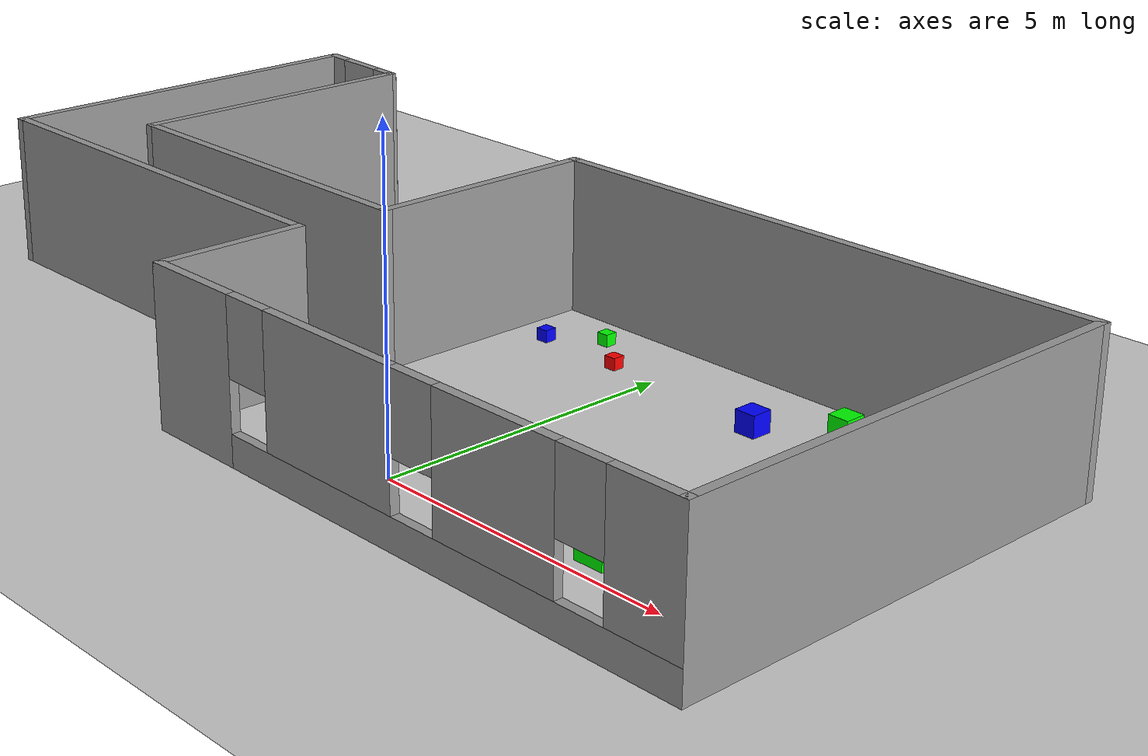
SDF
<sdf version="1.6">
 <world name="default">
  <light name="sun" type="directional">
   <pose>0 0 10 0 -0 0</pose>
   <diffuse>0.8 0.8 0.8 1</diffuse>
   <specular>0.1 0.1 0.1 1</specular>
   <attenuation>
    <range>1000</range>
    <constant>0.9</constant>
    <linear>0.01</linear>
    <quadratic>0.001</quadratic>
   </attenuation>
   <direction>-0.5 0.5 -1</direction>
  </light>
  <model name="ground_plane">
   <static>1</static>
   <link name="link">
    <collision name="collision">
     <geometry><plane><normal>0 0 1</normal><size>100 100</size></plane></geometry>
     <surface><friction><ode><mu>100</mu><mu2>50</mu2></ode></friction></surface>
    </collision>
    <visual name="visual">
     <cast_shadows>0</cast_shadows>
     <geometry><plane><normal>0 0 1</normal><size>100 100</size></plane></geometry>
     <material>
      <script><uri>file://media/materials/scripts/gazebo.material</uri><name>Gazebo/Grey</name></script>
     </material>
    </visual>
   </link>
  </model>
  <gravity>0 0 -9.8</gravity>
  <magnetic_field>6e-06 2.3e-05 -4.2e-05</magnetic_field>
  <atmosphere type="adiabatic"/>
  <physics name="default_physics" default="0" type="ode">
   <max_step_size>0.001</max_step_size>
   <real_time_factor>1</real_time_factor>
   <real_time_update_rate>1000</real_time_update_rate>
  </physics>
  <scene><ambient>0.4 0.4 0.4 1</ambient><background>0.7 0.7 0.7 1</background><shadows>1</shadows></scene>
  <spherical_coordinates>
   <surface_model>EARTH_WGS84</surface_model>
   <latitude_deg>0</latitude_deg>
   <longitude_deg>0</longitude_deg>
   <elevation>0</elevation>
   <heading_deg>0</heading_deg>
  </spherical_coordinates>
  <model name="mapa_final">
   <pose>-2.18928 3.20404 0 0 -0 0</pose>
   <link name="Wall_1">
    <collision name="Wall_1_Collision">
     <geometry><box><size>6.75 0.15 2.5</size></box></geometry>
     <pose>0 0 1.25 0 -0 0</pose>
    </collision>
    <visual name="Wall_1_Visual">
     <pose>0 0 1.25 0 -0 0</pose>
     <geometry><box><size>6.75 0.15 2.5</size></box></geometry>
     <material>
      <script><uri>file://media/materials/scripts/gazebo.material</uri><name>Gazebo/Grey</name></script>
      <ambient>1 1 1 1</ambient>
     </material>
    </visual>
    <pose>-8.72292 1.17292 0 0 0 -1.5708</pose>
   </link>
   <link name="Wall_10">
    <pose>-7.84792 4.42292 0 0 -0 3.08451</pose>
    <visual name="Wall_10_Visual_0">
     <pose>-0.700515 0 1.25 0 -0 0</pose>
     <geometry><box><size>0.501825 0.15 2.5</size></box></geometry>
     <material>
      <script><uri>file://media/materials/scripts/gazebo.material</uri><name>Gazebo/Grey</name></script>
      <ambient>1 1 1 1</ambient>
     </material>
    </visual>
    <collision name="Wall_10_Collision_0">
     <geometry><box><size>0.501825 0.15 2.5</size></box></geometry>
     <pose>-0.700515 0 1.25 0 -0 0</pose>
    </collision>
    <visual name="Wall_10_Visual_1">
     <pose>0.700912 0 1.25 0 -0 0</pose>
     <geometry><box><size>0.50103 0.15 2.5</size></box></geometry>
     <material>
      <script><uri>file://media/materials/scripts/gazebo.material</uri><name>Gazebo/Grey</name></script>
      <ambient>1 1 1 1</ambient>
     </material>
    </visual>
    <collision name="Wall_10_Collision_1">
     <geometry><box><size>0.50103 0.15 2.5</size></box></geometry>
     <pose>0.700912 0 1.25 0 -0 0</pose>
    </collision>
    <visual name="Wall_10_Visual_2">
     <pose>0.000397 0 2.25 0 -0 0</pose>
     <geometry><box><size>0.9 0.15 0.5</size></box></geometry>
     <material>
      <script><uri>file://media/materials/scripts/gazebo.material</uri><name>Gazebo/Grey</name></script>
      <ambient>1 1 1 1</ambient>
     </material>
    </visual>
    <collision name="Wall_10_Collision_2">
     <geometry><box><size>0.9 0.15 0.5</size></box></geometry>
     <pose>0.000397 0 2.25 0 -0 0</pose>
    </collision>
   </link>
   <link name="Wall_2">
    <collision name="Wall_2_Collision">
     <geometry><box><size>7.75 0.15 2.5</size></box></geometry>
     <pose>0 0 1.25 0 -0 0</pose>
    </collision>
    <visual name="Wall_2_Visual">
     <pose>0 0 1.25 0 -0 0</pose>
     <geometry><box><size>7.75 0.15 2.5</size></box></geometry>
     <material>
      <script><uri>file://media/materials/scripts/gazebo.material</uri><name>Gazebo/Grey</name></script>
      <ambient>1 1 1 1</ambient>
     </material>
    </visual>
    <pose>-4.92292 -2.12708 0 0 -0 0</pose>
   </link>
   <link name="Wall_3">
    <collision name="Wall_3_Collision">
     <geometry><box><size>2.5 0.15 2.5</size></box></geometry>
     <pose>0 0 1.25 0 -0 0</pose>
    </collision>
    <visual name="Wall_3_Visual">
     <pose>0 0 1.25 0 -0 0</pose>
     <geometry><box><size>2.5 0.15 2.5</size></box></geometry>
     <material>
      <script><uri>file://media/materials/scripts/gazebo.material</uri><name>Gazebo/Grey</name></script>
      <ambient>1 1 1 1</ambient>
     </material>
    </visual>
    <pose>-1.12292 -3.30208 0 0 0 -1.5708</pose>
   </link>
   <link name="Wall_4">
    <pose>3.80208 -4.47708 0 0 -0 0</pose>
    <visual name="Wall_4_Visual_0">
     <pose>-4.14301 0 1.25 0 -0 0</pose>
     <geometry><box><size>1.71398 0.15 2.5</size></box></geometry>
     <material>
      <script><uri>file://media/materials/scripts/gazebo.material</uri><name>Gazebo/Grey</name></script>
      <ambient>1 1 1 1</ambient>
     </material>
    </visual>
    <collision name="Wall_4_Collision_0">
     <geometry><box><size>1.71398 0.15 2.5</size></box></geometry>
     <pose>-4.14301 0 1.25 0 -0 0</pose>
    </collision>
    <visual name="Wall_4_Visual_1">
     <pose>0.856991 0 0.25 0 -0 0</pose>
     <geometry><box><size>8.28602 0.15 0.5</size></box></geometry>
     <material>
      <script><uri>file://media/materials/scripts/gazebo.material</uri><name>Gazebo/Grey</name></script>
      <ambient>1 1 1 1</ambient>
     </material>
    </visual>
    <collision name="Wall_4_Collision_1">
     <geometry><box><size>8.28602 0.15 0.5</size></box></geometry>
     <pose>0.856991 0 0.25 0 -0 0</pose>
    </collision>
    <visual name="Wall_4_Visual_2">
     <pose>-1.21503 0 1.5 0 -0 0</pose>
     <geometry><box><size>2.54198 0.15 2</size></box></geometry>
     <material>
      <script><uri>file://media/materials/scripts/gazebo.material</uri><name>Gazebo/Grey</name></script>
      <ambient>1 1 1 1</ambient>
     </material>
    </visual>
    <collision name="Wall_4_Collision_2">
     <geometry><box><size>2.54198 0.15 2</size></box></geometry>
     <pose>-1.21503 0 1.5 0 -0 0</pose>
    </collision>
    <visual name="Wall_4_Visual_3">
     <pose>1.91588 0 1.5 0 -0 0</pose>
     <geometry><box><size>2.11984 0.15 2</size></box></geometry>
     <material>
      <script><uri>file://media/materials/scripts/gazebo.material</uri><name>Gazebo/Grey</name></script>
      <ambient>1 1 1 1</ambient>
     </material>
    </visual>
    <collision name="Wall_4_Collision_3">
     <geometry><box><size>2.11984 0.15 2</size></box></geometry>
     <pose>1.91588 0 1.5 0 -0 0</pose>
    </collision>
    <visual name="Wall_4_Visual_4">
     <pose>4.3879 0 1.5 0 -0 0</pose>
     <geometry><box><size>1.2242 0.15 2</size></box></geometry>
     <material>
      <script><uri>file://media/materials/scripts/gazebo.material</uri><name>Gazebo/Grey</name></script>
      <ambient>1 1 1 1</ambient>
     </material>
    </visual>
    <collision name="Wall_4_Collision_4">
     <geometry><box><size>1.2242 0.15 2</size></box></geometry>
     <pose>4.3879 0 1.5 0 -0 0</pose>
    </collision>
    <visual name="Wall_4_Visual_5">
     <pose>-2.88602 0 1.9 0 -0 0</pose>
     <geometry><box><size>0.8 0.15 1.2</size></box></geometry>
     <material>
      <script><uri>file://media/materials/scripts/gazebo.material</uri><name>Gazebo/Grey</name></script>
      <ambient>1 1 1 1</ambient>
     </material>
    </visual>
    <collision name="Wall_4_Collision_5">
     <geometry><box><size>0.8 0.15 1.2</size></box></geometry>
     <pose>-2.88602 0 1.9 0 -0 0</pose>
    </collision>
    <visual name="Wall_4_Visual_6">
     <pose>0.455963 0 1.9 0 -0 0</pose>
     <geometry><box><size>0.8 0.15 1.2</size></box></geometry>
     <material>
      <script><uri>file://media/materials/scripts/gazebo.material</uri><name>Gazebo/Grey</name></script>
      <ambient>1 1 1 1</ambient>
     </material>
    </visual>
    <collision name="Wall_4_Collision_6">
     <geometry><box><size>0.8 0.15 1.2</size></box></geometry>
     <pose>0.455963 0 1.9 0 -0 0</pose>
    </collision>
    <visual name="Wall_4_Visual_7">
     <pose>3.3758 0 1.9 0 -0 0</pose>
     <geometry><box><size>0.8 0.15 1.2</size></box></geometry>
     <material>
      <script><uri>file://media/materials/scripts/gazebo.material</uri><name>Gazebo/Grey</name></script>
      <ambient>1 1 1 1</ambient>
     </material>
    </visual>
    <collision name="Wall_4_Collision_7">
     <geometry><box><size>0.8 0.15 1.2</size></box></geometry>
     <pose>3.3758 0 1.9 0 -0 0</pose>
    </collision>
   </link>
   <link name="Wall_5">
    <collision name="Wall_5_Collision">
     <geometry><box><size>7.75 0.15 2.5</size></box></geometry>
     <pose>0 0 1.25 0 -0 0</pose>
    </collision>
    <visual name="Wall_5_Visual">
     <pose>0 0 1.25 0 -0 0</pose>
     <geometry><box><size>7.75 0.15 2.5</size></box></geometry>
     <material>
      <script><uri>file://media/materials/scripts/gazebo.material</uri><name>Gazebo/Grey</name></script>
      <ambient>1 1 1 1</ambient>
     </material>
    </visual>
    <pose>8.72708 -0.677078 0 0 -0 1.5708</pose>
   </link>
   <link name="Wall_6">
    <collision name="Wall_6_Collision">
     <geometry><box><size>9.75 0.15 2.5</size></box></geometry>
     <pose>0 0 1.25 0 -0 0</pose>
    </collision>
    <visual name="Wall_6_Visual">
     <pose>0 0 1.25 0 -0 0</pose>
     <geometry><box><size>9.75 0.15 2.5</size></box></geometry>
     <material>
      <script><uri>file://media/materials/scripts/gazebo.material</uri><name>Gazebo/Grey</name></script>
      <ambient>1 1 1 1</ambient>
     </material>
    </visual>
    <pose>3.92708 3.12292 0 0 -0 3.14159</pose>
   </link>
   <link name="Wall_7">
    <collision name="Wall_7_Collision">
     <geometry><box><size>4 0.15 2.5</size></box></geometry>
     <pose>0 0 1.25 0 -0 0</pose>
    </collision>
    <visual name="Wall_7_Visual">
     <pose>0 0 1.25 0 -0 0</pose>
     <geometry><box><size>4 0.15 2.5</size></box></geometry>
     <material>
      <script><uri>file://media/materials/scripts/gazebo.material</uri><name>Gazebo/Grey</name></script>
      <ambient>1 1 1 1</ambient>
     </material>
    </visual>
    <pose>-0.872922 1.19792 0 0 0 -1.5708</pose>
   </link>
   <link name="Wall_8">
    <collision name="Wall_8_Collision">
     <geometry><box><size>6.25 0.15 2.5</size></box></geometry>
     <pose>0 0 1.25 0 -0 0</pose>
    </collision>
    <visual name="Wall_8_Visual">
     <pose>0 0 1.25 0 -0 0</pose>
     <geometry><box><size>6.25 0.15 2.5</size></box></geometry>
     <material>
      <script><uri>file://media/materials/scripts/gazebo.material</uri><name>Gazebo/Grey</name></script>
      <ambient>1 1 1 1</ambient>
     </material>
    </visual>
    <pose>-3.92292 -0.727078 0 0 -0 3.14159</pose>
   </link>
   <link name="Wall_9">
    <collision name="Wall_9_Collision">
     <geometry><box><size>5.25 0.15 2.5</size></box></geometry>
     <pose>0 0 1.25 0 -0 0</pose>
    </collision>
    <visual name="Wall_9_Visual">
     <pose>0 0 1.25 0 -0 0</pose>
     <geometry><box><size>5.25 0.15 2.5</size></box></geometry>
     <material>
      <script><uri>file://media/materials/scripts/gazebo.material</uri><name>Gazebo/Grey</name></script>
      <ambient>1 1 1 1</ambient>
     </material>
    </visual>
    <pose>-6.97292 1.82292 0 0 -0 1.5708</pose>
   </link>
   <static>1</static>
  </model>
  <model name="mesa_pequenya_azul">
   <link name="link_0">
    <inertial>
     <mass>1</mass>
     <inertia>
      <ixx>0.166667</ixx>
      <ixy>0</ixy>
      <ixz>0</ixz>
      <iyy>0.166667</iyy>
      <iyz>0</iyz>
      <izz>0.166667</izz>
     </inertia>
    </inertial>
    <visual name="visual">
     <pose>0 0 -0.4 0 -0 0</pose>
     <geometry><box><size>0.2 0.2 0.2</size></box></geometry>
     <material>
      <lighting>1</lighting>
      <script><uri>file://media/materials/scripts/gazebo.material</uri><name>Gazebo/Grey</name></script>
      <ambient>0 0 1 1</ambient>
      <diffuse>0.7 0.7 0.7 1</diffuse>
      <specular>0.01 0.01 0.01 1</specular>
      <emissive>0 0 0 1</emissive>
      <shader type="vertex"><normal_map>__default__</normal_map></shader>
     </material>
    </visual>
    <collision name="collision">
     <geometry><box><size>1 1 1</size></box></geometry>
     <surface>
      <friction>
       <ode><mu>1</mu><mu2>1</mu2><fdir1>0 0 0</fdir1><slip1>0</slip1><slip2>0</slip2></ode>
       <torsional>
        <coefficient>1</coefficient>
        <patch_radius>0</patch_radius>
        <surface_radius>0</surface_radius>
        <use_patch_radius>1</use_patch_radius>
        <ode><slip>0</slip></ode>
       </torsional>
      </friction>
      <bounce><restitution_coefficient>0</restitution_coefficient><threshold>1e+06</threshold></bounce>
      <contact>
       <collide_without_contact>0</collide_without_contact>
       <collide_without_contact_bitmask>1</collide_without_contact_bitmask>
       <collide_bitmask>1</collide_bitmask>
       <ode>
        <soft_cfm>0</soft_cfm>
        <soft_erp>0.2</soft_erp>
        <kp>1e+13</kp>
        <kd>1</kd>
        <max_vel>0.01</max_vel>
        <min_depth>0</min_depth>
       </ode>
       <bullet>
        <split_impulse>1</split_impulse>
        <split_impulse_penetration_threshold>-0.01</split_impulse_penetration_threshold>
        <soft_cfm>0</soft_cfm>
        <soft_erp>0.2</soft_erp>
        <kp>1e+13</kp>
        <kd>1</kd>
       </bullet>
      </contact>
     </surface>
    </collision>
   </link>
   <static>0</static>
   <pose>-2.30858 5.04115 0.499995 1e-05 -0 0.024501</pose>
  </model>
  <model name="mesa_pequenya_verde">
   <link name="link_0">
    <inertial>
     <mass>1</mass>
     <inertia>
      <ixx>0.166667</ixx>
      <ixy>0</ixy>
      <ixz>0</ixz>
      <iyy>0.166667</iyy>
      <iyz>0</iyz>
      <izz>0.166667</izz>
     </inertia>
    </inertial>
    <visual name="visual">
     <pose>0 0 -0.4 0 -0 0</pose>
     <geometry><box><size>0.2 0.2 0.2</size></box></geometry>
     <material>
      <lighting>1</lighting>
      <script><uri>file://media/materials/scripts/gazebo.material</uri><name>Gazebo/Grey</name></script>
      <ambient>0 1 0 1</ambient>
      <diffuse>0.7 0.7 0.7 1</diffuse>
      <specular>0.01 0.01 0.01 1</specular>
      <emissive>0 0 0 1</emissive>
      <shader type="vertex"><normal_map>__default__</normal_map></shader>
     </material>
    </visual>
    <collision name="collision">
     <geometry><box><size>1 1 1</size></box></geometry>
     <surface>
      <friction>
       <ode><mu>1</mu><mu2>1</mu2><fdir1>0 0 0</fdir1><slip1>0</slip1><slip2>0</slip2></ode>
       <torsional>
        <coefficient>1</coefficient>
        <patch_radius>0</patch_radius>
        <surface_radius>0</surface_radius>
        <use_patch_radius>1</use_patch_radius>
        <ode><slip>0</slip></ode>
       </torsional>
      </friction>
      <bounce><restitution_coefficient>0</restitution_coefficient><threshold>1e+06</threshold></bounce>
      <contact>
       <collide_without_contact>0</collide_without_contact>
       <collide_without_contact_bitmask>1</collide_without_contact_bitmask>
       <collide_bitmask>1</collide_bitmask>
       <ode>
        <soft_cfm>0</soft_cfm>
        <soft_erp>0.2</soft_erp>
        <kp>1e+13</kp>
        <kd>1</kd>
        <max_vel>0.01</max_vel>
        <min_depth>0</min_depth>
       </ode>
       <bullet>
        <split_impulse>1</split_impulse>
        <split_impulse_penetration_threshold>-0.01</split_impulse_penetration_threshold>
        <soft_cfm>0</soft_cfm>
        <soft_erp>0.2</soft_erp>
        <kp>1e+13</kp>
        <kd>1</kd>
       </bullet>
      </contact>
     </surface>
    </collision>
   </link>
   <static>0</static>
   <pose>-1.55433 5.60671 0.5 0 -0 0.026941</pose>
  </model>
  <model name="mesa_pequenya_roja">
   <link name="link_0">
    <inertial>
     <mass>1</mass>
     <inertia>
      <ixx>0.166667</ixx>
      <ixy>0</ixy>
      <ixz>0</ixz>
      <iyy>0.166667</iyy>
      <iyz>0</iyz>
      <izz>0.166667</izz>
     </inertia>
    </inertial>
    <visual name="visual">
     <pose>0 0 -0.4 0 -0 0</pose>
     <geometry><box><size>0.2 0.2 0.2</size></box></geometry>
     <material>
      <lighting>1</lighting>
      <script><uri>file://media/materials/scripts/gazebo.material</uri><name>Gazebo/Grey</name></script>
      <ambient>1 0 0 1</ambient>
      <diffuse>0.7 0.7 0.7 1</diffuse>
      <specular>0.01 0.01 0.01 1</specular>
      <emissive>0 0 0 1</emissive>
      <shader type="vertex"><normal_map>__default__</normal_map></shader>
     </material>
    </visual>
    <collision name="collision">
     <geometry><box><size>1 1 1</size></box></geometry>
     <surface>
      <friction>
       <ode><mu>1</mu><mu2>1</mu2><fdir1>0 0 0</fdir1><slip1>0</slip1><slip2>0</slip2></ode>
       <torsional>
        <coefficient>1</coefficient>
        <patch_radius>0</patch_radius>
        <surface_radius>0</surface_radius>
        <use_patch_radius>1</use_patch_radius>
        <ode><slip>0</slip></ode>
       </torsional>
      </friction>
      <bounce><restitution_coefficient>0</restitution_coefficient><threshold>1e+06</threshold></bounce>
      <contact>
       <collide_without_contact>0</collide_without_contact>
       <collide_without_contact_bitmask>1</collide_without_contact_bitmask>
       <collide_bitmask>1</collide_bitmask>
       <ode>
        <soft_cfm>0</soft_cfm>
        <soft_erp>0.2</soft_erp>
        <kp>1e+13</kp>
        <kd>1</kd>
        <max_vel>0.01</max_vel>
        <min_depth>0</min_depth>
       </ode>
       <bullet>
        <split_impulse>1</split_impulse>
        <split_impulse_penetration_threshold>-0.01</split_impulse_penetration_threshold>
        <soft_cfm>0</soft_cfm>
        <soft_erp>0.2</soft_erp>
        <kp>1e+13</kp>
        <kd>1</kd>
       </bullet>
      </contact>
     </surface>
    </collision>
   </link>
   <static>0</static>
   <pose>-0.796134 5.0128 0.499995 -1e-05 -0 0.028794</pose>
  </model>
  <model name="mesa_mediana_azul">
   <link name="link_1">
    <inertial>
     <mass>1</mass>
     <inertia>
      <ixx>0.166667</ixx>
      <ixy>0</ixy>
      <ixz>0</ixz>
      <iyy>0.166667</iyy>
      <iyz>0</iyz>
      <izz>0.166667</izz>
     </inertia>
    </inertial>
    <visual name="visual">
     <pose>0 0 -0.325 0 -0 0</pose>
     <geometry><box><size>0.35 0.35 0.35</size></box></geometry>
     <material>
      <lighting>1</lighting>
      <script><uri>file://media/materials/scripts/gazebo.material</uri><name>Gazebo/Grey</name></script>
      <ambient>0 0 1 1</ambient>
      <diffuse>0.7 0.7 0.7 1</diffuse>
      <specular>0.01 0.01 0.01 1</specular>
      <emissive>0 0 0 1</emissive>
      <shader type="vertex"><normal_map>__default__</normal_map></shader>
     </material>
    </visual>
    <collision name="collision">
     <geometry><box><size>1 1 1</size></box></geometry>
     <surface>
      <friction>
       <ode><mu>1</mu><mu2>1</mu2><fdir1>0 0 0</fdir1><slip1>0</slip1><slip2>0</slip2></ode>
       <torsional>
        <coefficient>1</coefficient>
        <patch_radius>0</patch_radius>
        <surface_radius>0</surface_radius>
        <use_patch_radius>1</use_patch_radius>
        <ode><slip>0</slip></ode>
       </torsional>
      </friction>
      <bounce><restitution_coefficient>0</restitution_coefficient><threshold>1e+06</threshold></bounce>
      <contact>
       <collide_without_contact>0</collide_without_contact>
       <collide_without_contact_bitmask>1</collide_without_contact_bitmask>
       <collide_bitmask>1</collide_bitmask>
       <ode>
        <soft_cfm>0</soft_cfm>
        <soft_erp>0.2</soft_erp>
        <kp>1e+13</kp>
        <kd>1</kd>
        <max_vel>0.01</max_vel>
        <min_depth>0</min_depth>
       </ode>
       <bullet>
        <split_impulse>1</split_impulse>
        <split_impulse_penetration_threshold>-0.01</split_impulse_penetration_threshold>
        <soft_cfm>0</soft_cfm>
        <soft_erp>0.2</soft_erp>
        <kp>1e+13</kp>
        <kd>1</kd>
       </bullet>
      </contact>
     </surface>
    </collision>
   </link>
   <static>0</static>
   <pose>2.1876 4.76182 0.499995 0 -1e-05 0</pose>
  </model>
  <model name="mesa_mediana_verde">
   <link name="link_1">
    <inertial>
     <mass>1</mass>
     <inertia>
      <ixx>0.166667</ixx>
      <ixy>0</ixy>
      <ixz>0</ixz>
      <iyy>0.166667</iyy>
      <iyz>0</iyz>
      <izz>0.166667</izz>
     </inertia>
    </inertial>
    <visual name="visual">
     <pose>0 0 -0.325 0 -0 0</pose>
     <geometry><box><size>0.35 0.35 0.35</size></box></geometry>
     <material>
      <lighting>1</lighting>
      <script><uri>file://media/materials/scripts/gazebo.material</uri><name>Gazebo/Grey</name></script>
      <ambient>0 1 0 1</ambient>
      <diffuse>0.7 0.7 0.7 1</diffuse>
      <specular>0.01 0.01 0.01 1</specular>
      <emissive>0 0 0 1</emissive>
      <shader type="vertex"><normal_map>__default__</normal_map></shader>
     </material>
    </visual>
    <collision name="collision">
     <geometry><box><size>1 1 1</size></box></geometry>
     <surface>
      <friction>
       <ode><mu>1</mu><mu2>1</mu2><fdir1>0 0 0</fdir1><slip1>0</slip1><slip2>0</slip2></ode>
       <torsional>
        <coefficient>1</coefficient>
        <patch_radius>0</patch_radius>
        <surface_radius>0</surface_radius>
        <use_patch_radius>1</use_patch_radius>
        <ode><slip>0</slip></ode>
       </torsional>
      </friction>
      <bounce><restitution_coefficient>0</restitution_coefficient><threshold>1e+06</threshold></bounce>
      <contact>
       <collide_without_contact>0</collide_without_contact>
       <collide_without_contact_bitmask>1</collide_without_contact_bitmask>
       <collide_bitmask>1</collide_bitmask>
       <ode>
        <soft_cfm>0</soft_cfm>
        <soft_erp>0.2</soft_erp>
        <kp>1e+13</kp>
        <kd>1</kd>
        <max_vel>0.01</max_vel>
        <min_depth>0</min_depth>
       </ode>
       <bullet>
        <split_impulse>1</split_impulse>
        <split_impulse_penetration_threshold>-0.01</split_impulse_penetration_threshold>
        <soft_cfm>0</soft_cfm>
        <soft_erp>0.2</soft_erp>
        <kp>1e+13</kp>
        <kd>1</kd>
       </bullet>
      </contact>
     </surface>
    </collision>
   </link>
   <static>0</static>
   <pose>3.16691 5.58877 0.499995 0 -1e-05 0</pose>
  </model>
  <model name="mesa_mediana_roja">
   <link name="link_1">
    <inertial>
     <mass>1</mass>
     <inertia>
      <ixx>0.166667</ixx>
      <ixy>0</ixy>
      <ixz>0</ixz>
      <iyy>0.166667</iyy>
      <iyz>0</iyz>
      <izz>0.166667</izz>
     </inertia>
    </inertial>
    <visual name="visual">
     <pose>0 0 -0.325 0 -0 0</pose>
     <geometry><box><size>0.35 0.35 0.35</size></box></geometry>
     <material>
      <lighting>1</lighting>
      <script><uri>file://media/materials/scripts/gazebo.material</uri><name>Gazebo/Grey</name></script>
      <ambient>1 0 0 1</ambient>
      <diffuse>0.7 0.7 0.7 1</diffuse>
      <specular>0.01 0.01 0.01 1</specular>
      <emissive>0 0 0 1</emissive>
      <shader type="vertex"><normal_map>__default__</normal_map></shader>
     </material>
    </visual>
    <collision name="collision">
     <geometry><box><size>1 1 1</size></box></geometry>
     <surface>
      <friction>
       <ode><mu>1</mu><mu2>1</mu2><fdir1>0 0 0</fdir1><slip1>0</slip1><slip2>0</slip2></ode>
       <torsional>
        <coefficient>1</coefficient>
        <patch_radius>0</patch_radius>
        <surface_radius>0</surface_radius>
        <use_patch_radius>1</use_patch_radius>
        <ode><slip>0</slip></ode>
       </torsional>
      </friction>
      <bounce><restitution_coefficient>0</restitution_coefficient><threshold>1e+06</threshold></bounce>
      <contact>
       <collide_without_contact>0</collide_without_contact>
       <collide_without_contact_bitmask>1</collide_without_contact_bitmask>
       <collide_bitmask>1</collide_bitmask>
       <ode>
        <soft_cfm>0</soft_cfm>
        <soft_erp>0.2</soft_erp>
        <kp>1e+13</kp>
        <kd>1</kd>
        <max_vel>0.01</max_vel>
        <min_depth>0</min_depth>
       </ode>
       <bullet>
        <split_impulse>1</split_impulse>
        <split_impulse_penetration_threshold>-0.01</split_impulse_penetration_threshold>
        <soft_cfm>0</soft_cfm>
        <soft_erp>0.2</soft_erp>
        <kp>1e+13</kp>
        <kd>1</kd>
       </bullet>
      </contact>
     </surface>
    </collision>
   </link>
   <static>0</static>
   <pose>4.1448 4.73401 0.499995 0 -1e-05 0</pose>
  </model>
  <model name="mesa_grande_azul">
   <link name="link_0">
    <inertial>
     <mass>1</mass>
     <inertia>
      <ixx>0.166667</ixx>
      <ixy>0</ixy>
      <ixz>0</ixz>
      <iyy>0.166667</iyy>
      <iyz>0</iyz>
      <izz>0.166667</izz>
     </inertia>
    </inertial>
    <visual name="visual">
     <pose>0 0 -0.25 0 -0 0</pose>
     <geometry><box><size>0.5 0.5 0.5</size></box></geometry>
     <material>
      <lighting>1</lighting>
      <script><uri>file://media/materials/scripts/gazebo.material</uri><name>Gazebo/Grey</name></script>
      <ambient>0 0 1 1</ambient>
      <diffuse>0.7 0.7 0.7 1</diffuse>
      <specular>0.01 0.01 0.01 1</specular>
      <emissive>0 0 0 1</emissive>
      <shader type="vertex"><normal_map>__default__</normal_map></shader>
     </material>
    </visual>
    <collision name="collision">
     <geometry><box><size>1 1 1</size></box></geometry>
     <surface>
      <friction>
       <ode><mu>1</mu><mu2>1</mu2><fdir1>0 0 0</fdir1><slip1>0</slip1><slip2>0</slip2></ode>
       <torsional>
        <coefficient>1</coefficient>
        <patch_radius>0</patch_radius>
        <surface_radius>0</surface_radius>
        <use_patch_radius>1</use_patch_radius>
        <ode><slip>0</slip></ode>
       </torsional>
      </friction>
      <bounce><restitution_coefficient>0</restitution_coefficient><threshold>1e+06</threshold></bounce>
      <contact>
       <collide_without_contact>0</collide_without_contact>
       <collide_without_contact_bitmask>1</collide_without_contact_bitmask>
       <collide_bitmask>1</collide_bitmask>
       <ode>
        <soft_cfm>0</soft_cfm>
        <soft_erp>0.2</soft_erp>
        <kp>1e+13</kp>
        <kd>1</kd>
        <max_vel>0.01</max_vel>
        <min_depth>0</min_depth>
       </ode>
       <bullet>
        <split_impulse>1</split_impulse>
        <split_impulse_penetration_threshold>-0.01</split_impulse_penetration_threshold>
        <soft_cfm>0</soft_cfm>
        <soft_erp>0.2</soft_erp>
        <kp>1e+13</kp>
        <kd>1</kd>
       </bullet>
      </contact>
     </surface>
    </collision>
   </link>
   <static>0</static>
   <pose>4.60962 1.57248 0.499995 1e-05 -0 0</pose>
  </model>
  <model name="mesa_grande_verde">
   <link name="link_0">
    <inertial>
     <mass>1</mass>
     <inertia>
      <ixx>0.166667</ixx>
      <ixy>0</ixy>
      <ixz>0</ixz>
      <iyy>0.166667</iyy>
      <iyz>0</iyz>
      <izz>0.166667</izz>
     </inertia>
    </inertial>
    <visual name="visual">
     <pose>0 0 -0.25 0 -0 0</pose>
     <geometry><box><size>0.5 0.5 0.5</size></box></geometry>
     <material>
      <lighting>1</lighting>
      <script><uri>file://media/materials/scripts/gazebo.material</uri><name>Gazebo/Grey</name></script>
      <ambient>0 1 0 1</ambient>
      <diffuse>0.7 0.7 0.7 1</diffuse>
      <specular>0.01 0.01 0.01 1</specular>
      <emissive>0 0 0 1</emissive>
      <shader type="vertex"><normal_map>__default__</normal_map></shader>
     </material>
    </visual>
    <collision name="collision">
     <geometry><box><size>1 1 1</size></box></geometry>
     <surface>
      <friction>
       <ode><mu>1</mu><mu2>1</mu2><fdir1>0 0 0</fdir1><slip1>0</slip1><slip2>0</slip2></ode>
       <torsional>
        <coefficient>1</coefficient>
        <patch_radius>0</patch_radius>
        <surface_radius>0</surface_radius>
        <use_patch_radius>1</use_patch_radius>
        <ode><slip>0</slip></ode>
       </torsional>
      </friction>
      <bounce><restitution_coefficient>0</restitution_coefficient><threshold>1e+06</threshold></bounce>
      <contact>
       <collide_without_contact>0</collide_without_contact>
       <collide_without_contact_bitmask>1</collide_without_contact_bitmask>
       <collide_bitmask>1</collide_bitmask>
       <ode>
        <soft_cfm>0</soft_cfm>
        <soft_erp>0.2</soft_erp>
        <kp>1e+13</kp>
        <kd>1</kd>
        <max_vel>0.01</max_vel>
        <min_depth>0</min_depth>
       </ode>
       <bullet>
        <split_impulse>1</split_impulse>
        <split_impulse_penetration_threshold>-0.01</split_impulse_penetration_threshold>
        <soft_cfm>0</soft_cfm>
        <soft_erp>0.2</soft_erp>
        <kp>1e+13</kp>
        <kd>1</kd>
       </bullet>
      </contact>
     </surface>
    </collision>
   </link>
   <static>0</static>
   <pose>3.54388 0.473201 0.499995 1e-05 -0 0</pose>
  </model>
  <model name="mesa_grande_roja">
   <link name="link_0">
    <inertial>
     <mass>1</mass>
     <inertia>
      <ixx>0.166667</ixx>
      <ixy>0</ixy>
      <ixz>0</ixz>
      <iyy>0.166667</iyy>
      <iyz>0</iyz>
      <izz>0.166667</izz>
     </inertia>
    </inertial>
    <visual name="visual">
     <pose>0 0 -0.25 0 -0 0</pose>
     <geometry><box><size>0.5 0.5 0.5</size></box></geometry>
     <material>
      <lighting>1</lighting>
      <script><uri>file://media/materials/scripts/gazebo.material</uri><name>Gazebo/Grey</name></script>
      <ambient>1 0 0 1</ambient>
      <diffuse>0.7 0.7 0.7 1</diffuse>
      <specular>0.01 0.01 0.01 1</specular>
      <emissive>0 0 0 1</emissive>
      <shader type="vertex"><normal_map>__default__</normal_map></shader>
     </material>
    </visual>
    <collision name="collision">
     <geometry><box><size>1 1 1</size></box></geometry>
     <surface>
      <friction>
       <ode><mu>1</mu><mu2>1</mu2><fdir1>0 0 0</fdir1><slip1>0</slip1><slip2>0</slip2></ode>
       <torsional>
        <coefficient>1</coefficient>
        <patch_radius>0</patch_radius>
        <surface_radius>0</surface_radius>
        <use_patch_radius>1</use_patch_radius>
        <ode><slip>0</slip></ode>
       </torsional>
      </friction>
      <bounce><restitution_coefficient>0</restitution_coefficient><threshold>1e+06</threshold></bounce>
      <contact>
       <collide_without_contact>0</collide_without_contact>
       <collide_without_contact_bitmask>1</collide_without_contact_bitmask>
       <collide_bitmask>1</collide_bitmask>
       <ode>
        <soft_cfm>0</soft_cfm>
        <soft_erp>0.2</soft_erp>
        <kp>1e+13</kp>
        <kd>1</kd>
        <max_vel>0.01</max_vel>
        <min_depth>0</min_depth>
       </ode>
       <bullet>
        <split_impulse>1</split_impulse>
        <split_impulse_penetration_threshold>-0.01</split_impulse_penetration_threshold>
        <soft_cfm>0</soft_cfm>
        <soft_erp>0.2</soft_erp>
        <kp>1e+13</kp>
        <kd>1</kd>
       </bullet>
      </contact>
     </surface>
    </collision>
   </link>
   <static>0</static>
   <pose>2.47388 1.56914 0.499995 1e-05 -0 0</pose>
  </model>
  <plugin filename="libcollision_map_creator.so" name="collision_map_creator"/>
 </world>
</sdf>
